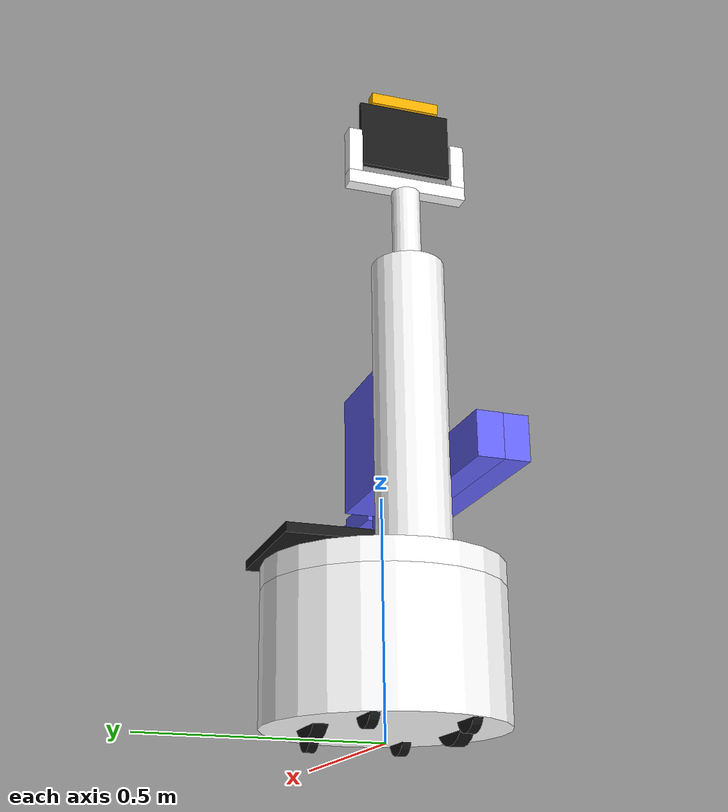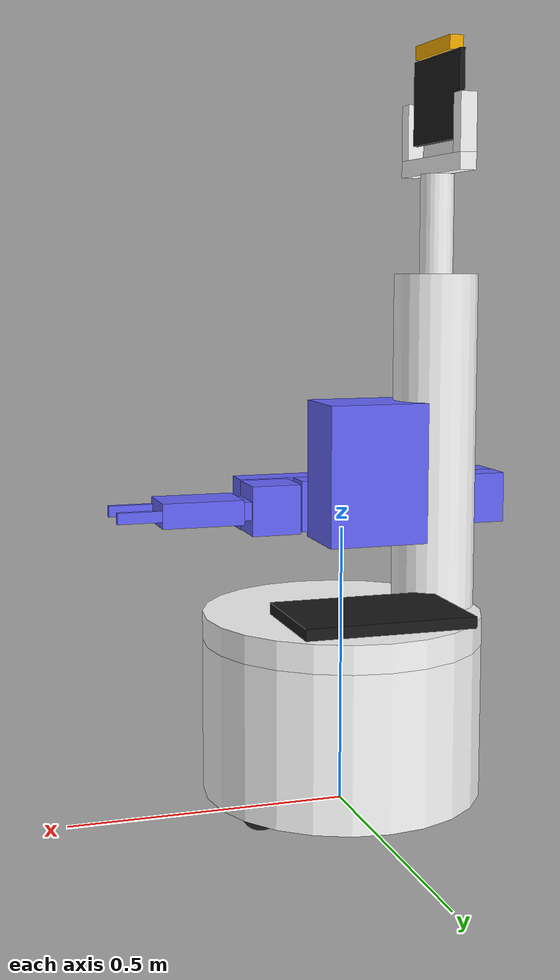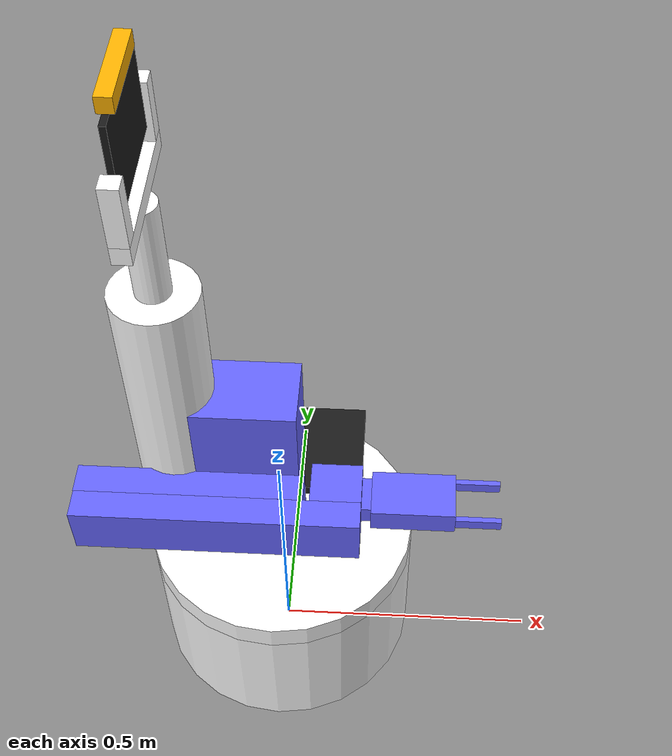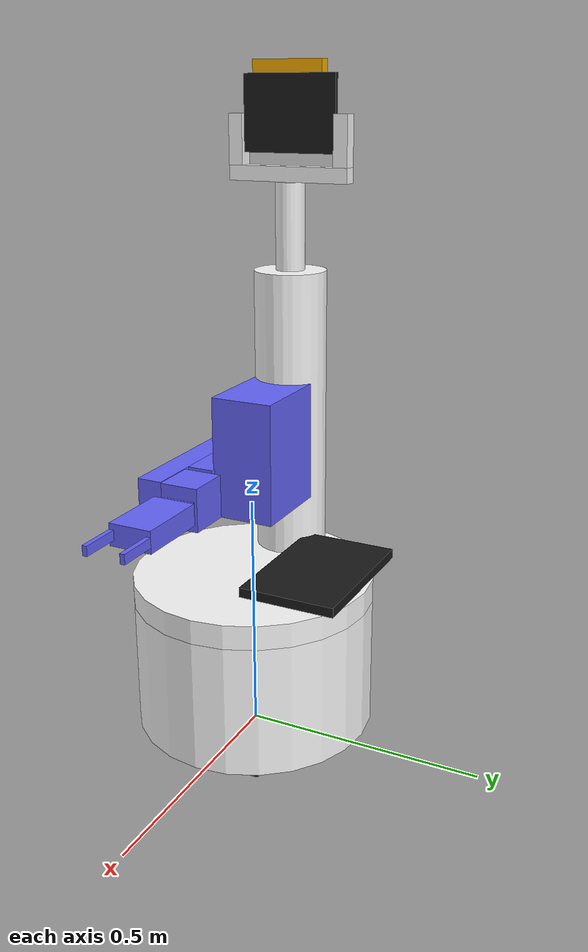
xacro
<?xml version="1.0" ?>
<robot xmlns:xacro="http://www.ros.org/wiki/xacro" name="korus">
  <include filename="$(find korus_meta)/resources/urdf/korus_robosem_base_back_mount_ava.xacro"/>
  <include filename="$(find korus_meta)/resources/urdf/korus_arm_forward.xacro"/>

  <!-- ************************ Robot model ************************* -->
  <xacro:korus_robosem_base_back_mount_ava>
  </xacro:korus_robosem_base_back_mount_ava>

  <!-- ************************ Arm model ************************* -->
	<xacro:korus_arm_forward parent="torso_lift_link">
	</xacro:korus_arm_forward>
</robot>

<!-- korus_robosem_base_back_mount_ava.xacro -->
<robot xmlns:xacro="http://www.ros.org/wiki/xacro">

	  <!-- ************************ Properties ************************** -->
	  <xacro:property name="pi" value="3.1415926535897931" />
	  <xacro:property name="material_white">
	    <material name="white">
	      <color rgba="1 1 1 1"/>
	    </material>
	  </xacro:property>
	  <xacro:property name="material_orange">
	    <material name="orange">
	      <color rgba="1.0 0.7 0.0 1"/>
	    </material>
	  </xacro:property>
	  <xacro:property name="material_red">
	    <material name="red">
	      <color rgba="1.0 0.0 0.0 1"/>
	    </material>
	  </xacro:property>
	  <xacro:property name="material_grey_blue">
	    <material name="grey_blue">
	      <color rgba="0.4 0.4 1.0 1"/>
	    </material>
	  </xacro:property>
	  <xacro:property name="material_blue">
	    <material name="blue">
	      <color rgba="0.0 0.0 1.0 1"/>
	    </material>
	  </xacro:property>
	  <xacro:property name="material_green">
	    <material name="green">
	      <color rgba="0 .8 0 1"/>
	    </material>
	  </xacro:property>
	  <xacro:property name="material_grey">
	    <material name="grey">
	      <color rgba="0.7 0.7 0.7 1.0"/>
	    </material>
	  </xacro:property>
	  <xacro:property name="material_black">
	    <material name="black">
	      <color rgba="0.1 0.1 0.1 1"/>
	    </material>
	  </xacro:property>
    <xacro:property name="wheel_bias" value="0.3" />
    <xacro:property name="wheel_radius" value="0.075" />
    <xacro:property name="caster_wheel_bias" value="0.2" />
    <xacro:property name="caster_wheel_radius" value="0.040" />

    <!-- ************************** Wheel macro ************************** -->
	  <xacro:macro name="wheel" params="name length radius off_x off_y off_z type">
	    <link name="${name}">
	      <visual>
	        <geometry>
	          <cylinder length="${length}" radius="${radius}"/>
	        </geometry>
	        <origin rpy="0 ${pi/2} 0" xyz="0 0 0"/>
	        <material name="black">
	          <color rgba="0.1 0.1 0.1 1"/>
	        </material>
	      </visual>
	    </link>
	    <joint name="${name}" type="${type}">
	      <parent link="base_link"/>
	      <child link="${name}"/>
	      <origin rpy="0 0 ${pi/2}" xyz="${off_x} ${off_y} ${off_z}"/>
	    </joint>
	  </xacro:macro>

    <!-- ************************** Robot macro ************************** -->
    <xacro:macro name="korus_robosem_base_back_mount_ava">

		  <!-- ************************** Base *************************** -->
		  <link name="base_footprint"></link>
		  <joint name="base_joint" type="fixed">
		    <parent link="base_footprint"/>
		    <child link="base_link"/>
		    <origin rpy="0 0 0" xyz="0.0 0.0 0.075"/>
		  </joint>
		  <link name="base_link">
		    <visual>
		      <origin rpy="0 0 0" xyz="0.0 0 0.0875"/>
		       <geometry>
		        <cylinder length="0.275" radius="0.250"/>
		      </geometry>
		      <xacro:insert_block name="material_white" />
		    </visual>
		    <collision>
		      <origin rpy="0 0 0" xyz="0.0 0 0.0875"/>
          <geometry>
            <cylinder length="0.275" radius="0.250"/>
          </geometry>
          <xacro:insert_block name="material_white" />
		    </collision>
		  </link>
		  <xacro:wheel name="wheel_left" length="0.03" radius="${wheel_radius}" off_x="0.0" off_y="${wheel_bias/2}" off_z="0.0" type="continuous"/>
		  <xacro:wheel name="wheel_right" length="0.03" radius="${wheel_radius}" off_x="0.0" off_y="-${wheel_bias/2}" off_z="0.0" type="continuous"/>
		  <xacro:wheel name="caster_front_left" length="0.02" radius="${caster_wheel_radius}" off_x="0.18" off_y="${caster_wheel_bias/2}" off_z="-0.035" type="fixed"/>
		  <xacro:wheel name="caster_front_right" length="0.02" radius="${caster_wheel_radius}" off_x="0.18" off_y="-${caster_wheel_bias/2}" off_z="-0.035" type="fixed"/>
		  <xacro:wheel name="caster_back_left" length="0.02" radius="${caster_wheel_radius}" off_x="-0.18" off_y="${caster_wheel_bias/2}" off_z="-0.035" type="fixed"/>
		  <xacro:wheel name="caster_back_right" length="0.02" radius="${caster_wheel_radius}" off_x="-0.18" off_y="-${caster_wheel_bias/2}" off_z="-0.035" type="fixed"/>

		  <!-- ************************** Body ************************** -->

		  <joint name="body" type="revolute">
		    <parent link="base_link"/>
		    <child link="body_link"/>
		    <origin rpy="0 0 0" xyz="0.0 0.0 0.250"/>
		    <axis xyz="0 0 1"/>.410
		    <limit effort="10" lower="-${pi}" upper="${pi}" velocity="0.013"/>
		  </joint>
		  <link name="body_link">
		    <visual>
		      <origin rpy="0 0 0" xyz="0.0 0.0 0.0"/>
		       <geometry>
		        <cylinder length="0.05" radius="0.25"/>
		      </geometry>
		      <xacro:insert_block name="material_white" />
		    </visual>
        <collision>
          <origin rpy="0 0 0" xyz="0.0 0.0 0.0"/>
           <geometry>
            <cylinder length="0.05" radius="0.25"/>
          </geometry>
          <xacro:insert_block name="material_white" />
        </collision>
		  </link>

      <!-- ************************** Tray ************************** -->
      <joint name="tray_joint" type="revolute">
        <parent link="base_link"/>
        <child link="tray_link"/>
        <origin rpy="0 0 0" xyz="0.0 0.0 0.250"/>
        <axis xyz="0 0 1"/>
        <limit effort="10" lower="-${pi}" upper="${pi}" velocity="0.013"/>
      </joint>
      <link name="tray_link">
	      <visual>
	        <geometry>
	          <box size="0.30 0.20 0.02" />
	        </geometry>
	        <origin rpy="0 0.0 0" xyz="0.0 0.15 0.05"/>
	        <xacro:insert_block name="material_black" />
	      </visual>
        <collision>
          <geometry>
            <box size="0.30 0.20 0.02" />
          </geometry>
          <origin rpy="0 0.0 0" xyz="0.0 0.15 0.05"/>
          <xacro:insert_block name="material_black" />
        </collision>
      </link>

		  <!-- ************************** Torso *************************** -->
		  <joint name="torso_joint" type="fixed">
		    <parent link="body_link"/>
		    <child link="torso_link"/>
		    <origin xyz="-0.175 0.0 0.025" rpy="0 0 0"/>
		  </joint>
		  <link name="torso_link">
		    <visual>
		      <geometry>
		        <cylinder length="0.60" radius="0.075"/>
		      </geometry>
		      <origin rpy="0 0 0" xyz="0 0 0.30"/>
		      <xacro:insert_block name="material_white" />
		    </visual>
        <collision>
          <geometry>
            <cylinder length="0.60" radius="0.075"/>
          </geometry>
          <origin rpy="0 0 0" xyz="0 0 0.30"/>
        </collision>
		  </link>

		  <joint name="torso_lift_offset" type="fixed">
		    <parent link="torso_link"/>
		    <child link="torso_lift_offset_link"/>
		    <origin xyz="0 0 0.25" rpy="0 0 0"/>
		    <axis xyz="0 0 1"/>
		  </joint>
		  <link name="torso_lift_offset_link"></link>

		  <joint name="torso_lift" type="prismatic">
		    <parent link="torso_lift_offset_link"/>
		    <child link="torso_lift_link"/>
		    <origin xyz="0 0 0" rpy="0 0 ${pi}"/>
		    <axis xyz="0 0 1"/>
		    <limit effort="10" lower="-0.10" upper="0.22" velocity="0.5"/>
		  </joint>
		  <link name="torso_lift_link">
		  </link>

    <!-- ************************** Neck ************************** -->

	  <!-- ************************** Head ************************** -->
	  <joint name="head_joint" type="fixed">
	    <parent link="torso_lift_link"/>
	    <child link="head_link"/>
	    <origin rpy="0 0 ${pi}" xyz="0.0 0.0 0.125"/>
	  </joint>
	  <link name="head_link">
	    <visual>
	      <geometry>
	        <cylinder length="0.40" radius="0.03"/>
	      </geometry>
	      <origin rpy="0 0 0" xyz="0.0 0.0 0.2"/>
	      <xacro:insert_block name="material_white" />
	    </visual>
	  </link>

<!--    ************************ Tablet ************************* -->
    <joint name="tablet_pan_joint" type="revolute">
      <parent link="head_link"/>
      <child link="tablet_pan_link"/>
      <origin rpy="0 0 0" xyz="0.0 0.0 0.40"/>
      <axis xyz="0 0 1"/>
      <limit effort="10" lower="-${pi/2}" upper="${pi/2}" velocity="0.013"/>
    </joint>
    <link name="tablet_pan_link">
      <visual>
        <geometry>
          <box size="0.03 0.26 0.03" />
        </geometry>
        <origin rpy="0.0 0.0 0.0" xyz="0.0 0.0 0.015"/>
        <xacro:insert_block name="material_white" />
      </visual>
    </link>

    <joint name="tablet_tilt_mount_left_joint" type="fixed">
      <parent link="tablet_pan_link"/>
      <child link="tablet_tilt_mount_left_link"/>
      <origin rpy="0 0 0" xyz="0 0.115 0"/>
    </joint>
    <link name="tablet_tilt_mount_left_link">
      <visual>
        <geometry>
          <box size="0.03 0.03 0.10" />
        </geometry>
        <origin rpy="0.0 0.0 0.0" xyz="0.0 0.0 0.08"/>
        <xacro:insert_block name="material_white" />
      </visual>
    </link>

    <joint name="tablet_tilt_mount_right_joint" type="fixed">
      <parent link="tablet_pan_link"/>
      <child link="tablet_tilt_mount_right_link"/>
      <origin rpy="0 0 0" xyz="0 -0.115 0"/>
    </joint>
    <link name="tablet_tilt_mount_right_link">
      <visual>
        <geometry>
          <box size="0.03 0.03 0.10 " />
        </geometry>
        <origin rpy="0.0 0.0 0.0" xyz="0.0 0.0 0.08"/>
        <xacro:insert_block name="material_white" />
      </visual>
    </link>

    <joint name="tablet_tilt_joint" type="revolute">
      <parent link="tablet_pan_link"/>
      <child link="tablet_tilt_link"/>
      <origin rpy="${pi/2} 0 0" xyz="0 0 0.13"/>
      <axis xyz="0 0 1"/>
      <limit effort="10" lower="-${pi/2}" upper="${pi/2}" velocity="0.013"/>
    </joint>
    <link name="tablet_tilt_link">
      <visual>
        <geometry>
          <box size="0.01 0.20 0.15" />
        </geometry>
        <origin rpy="-${pi/2} 0.0 0.0" xyz="0.0 0.0 0.0"/>
        <xacro:insert_block name="material_black" />
      </visual>
    </link>

    <!-- *********************** Asus Xtion ************************ -->
    <joint name="asus_tilt_joint" type="fixed">
      <parent link="tablet_tilt_link"/>
      <child link="asus_link"/>
      <origin rpy="0 0 0" xyz="0.0 0.0875 0.0"/>
    </joint>
    <link name="asus_link">
      <visual>
        <geometry>
          <box size="0.025 0.025 0.15" />
        </geometry>
        <origin rpy="0 0 0" xyz="0.0 0.0 0.0"/>
        <xacro:insert_block name="material_orange" />
      </visual>
    </link>
  </xacro:macro>
</robot>

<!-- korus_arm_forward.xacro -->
<robot xmlns:xacro="http://www.ros.org/wiki/xacro">

    <!-- ************************ Properties ************************* -->
    <xacro:property name="pi" value="3.1415926535897931" />
    <xacro:property name="material_white">
      <material name="white">
        <color rgba="1 1 1 1"/>
      </material>
    </xacro:property>
    <xacro:property name="material_orange">
      <material name="orange">
        <color rgba="1.0 0.7 0.0 1"/>
      </material>
    </xacro:property>
    <xacro:property name="material_red">
      <material name="red">
        <color rgba="1.0 0.0 0.0 1"/>
      </material>
    </xacro:property>
    <xacro:property name="material_grey_blue">
      <material name="grey_blue">
        <color rgba="0.4 0.4 1.0 1"/>
      </material>
    </xacro:property>
    <xacro:property name="material_blue">
      <material name="blue">
        <color rgba="0.0 0.0 1.0 1"/>
      </material>
    </xacro:property>
    <xacro:property name="material_green">
      <material name="green">
        <color rgba="0 .8 0 1"/>
      </material>
    </xacro:property>
    <xacro:property name="material_grey">
      <material name="grey">
        <color rgba="0.7 0.7 0.7 1.0"/>
      </material>
    </xacro:property>
    <xacro:property name="material_black">
      <material name="black">
        <color rgba="0.1 0.1 0.1 1"/>
      </material>
    </xacro:property>

  <!-- ************************ Arm macro ************************* -->
  <xacro:macro name="korus_arm_forward" params="parent">
    <joint name="arm_mount_joint" type="fixed">
      <parent link="${parent}"/>
      <child link="arm_mount_link"/>
      <origin xyz="0 0 0" rpy="0 0 0"/>
    </joint>
    <link name="arm_mount_link">
      <visual>
        <geometry>
          <box size="0.2185 0.25 0.13"/>
        </geometry>
        <origin xyz="-0.10925 0.0 0.0" rpy="${pi/2} 0 0"/>
        <xacro:insert_block name="material_grey_blue" />
      </visual>
    </link>

    <joint name="shoulder_roll" type="fixed">
      <parent link="arm_mount_link"/>
      <child link="shoulder_roll_link"/>
      <origin xyz="-0.175 0.09 -0.07" rpy="-${pi/2} 0 0"/>
    </joint>
	  <link name="shoulder_roll_link">
	  </link>

	  <joint name="shoulder_pitch" type="revolute">
	    <parent link="shoulder_roll_link"/>
	    <child link="shoulder_pitch_link"/>
	    <origin xyz="0.0 0.0 0.0" rpy="0.0 0.0 0.0"/>
	    <axis xyz="0 0 1"/>
	    <limit effort="10" lower="-${pi}" upper="${pi}" velocity="0.013"/>
	  </joint>
	  <link name="shoulder_pitch_link">
	    <visual>
	      <geometry>
	        <box size="0.40 0.093 0.055"/>
	      </geometry>
	      <origin xyz="0.146 0.0 0.0" rpy="0 0 0"/>
	      <xacro:insert_block name="material_grey_blue" />
	    </visual>
	  </link>

	  <joint name="elbow_pitch" type="revolute">
	    <parent link="shoulder_pitch_link"/>
	    <child link="elbow_pitch_link"/>
	    <origin xyz="0.29 0.0 0.045" rpy="0 0 3.141592"/>
	    <axis xyz="0 0 1"/>
	    <limit effort="10" lower="-${2*pi}" upper="${2*pi}" velocity="0.013"/>
	  </joint>
	  <link name="elbow_pitch_link">
	    <visual>
	      <geometry>
	        <box size="0.50 0.093 0.053"/>
	      </geometry>
	      <origin xyz="0.195 0.00 0.009" rpy="0 0 0"/>
	      <xacro:insert_block name="material_grey_blue" />
	    </visual>
	  </link>

	  <joint name="wrist_pitch" type="revolute">
	    <parent link="elbow_pitch_link"/>
	    <child link="wrist_pitch_link"/>
	    <origin xyz="0.40 0.0 -0.058" rpy="0 0 0"/>
	    <axis xyz="0 0 1"/>
      <limit effort="10" lower="-${pi}" upper="${pi}" velocity="0.013"/>
	  </joint>
	  <link name="wrist_pitch_link">
	    <visual>
	      <geometry>
	        <box size="0.09 0.09 0.081"/>
	      </geometry>
	      <origin xyz="0.0 0.0 0.0" rpy="0 0 0"/>
	      <xacro:insert_block name="material_grey_blue" />
	    </visual>
	  </link>

	  <joint name="wrist_roll" type="revolute">
	    <parent link="wrist_pitch_link"/>
	    <child link="wrist_roll_link"/>
	    <origin xyz="0.045 0 0" rpy="0 ${pi/2} 0.0"/>
	    <axis xyz="0 0 1"/>
	    <limit effort="10" lower="-${pi}" upper="${pi}" velocity="0.013"/>
	  </joint>
	  <link name="wrist_roll_link">
	    <visual>
	      <geometry>
	        <box size="0.068 0.034 0.068"/>
	      </geometry>
	      <origin xyz="0.0 0.0 0.034" rpy="0 0 0"/>
	      <xacro:insert_block name="material_grey_blue" />
	    </visual>
	  </link>

	  <joint name="wrist_yaw" type="revolute">
	    <parent link="wrist_roll_link"/>
	    <child link="wrist_yaw_link"/>
	    <origin xyz="0 0 0.034" rpy="${pi/2} -${pi/2} 0.0"/>
	    <axis xyz="0 0 1"/>
	    <limit effort="10" lower="-1.6232" upper="1.6232" velocity="0.5"/>
	  </joint>
	  <link name="wrist_yaw_link">
	      <visual>
	      <geometry>
	        <box size="0.148 0.09 0.045"/>
	      </geometry>
	      <origin xyz="0.057 0.0 0.0" rpy="0 0 0"/>
	      <xacro:insert_block name="material_grey_blue" />
	    </visual>
	  </link>

	<!--   Endeffector (gripper)  -->
	  <joint name="gripper_palm" type="fixed">
	    <parent link="wrist_yaw_link"/>
	    <child link="gripper_palm_link"/>
	    <origin xyz="0.131 0 0" rpy="0.0 0.0 0.0"/>
	    <axis xyz="0 0 1"/>
	    <limit effort="10" lower="-1.6232" upper="1.6232" velocity="0.5"/>
	  </joint>
	  <link name="gripper_palm_link">
	  </link>

	  <!-- center of the volume covered by the fingers -->
	  <joint name="gripper_center" type="fixed">
	    <parent link="wrist_yaw_link"/>
	    <child link="gripper_center_link"/>
	    <origin xyz="0.181 0 0" rpy="0 0 0"/>
	  </joint>
	  <link name="gripper_center_link">
	  </link>

	  <joint name="gripper_left_finger_joint" type="prismatic">
	    <parent link="wrist_yaw_link"/>
	    <child link="gripper_left_finger_tip_link"/>
	    <origin xyz="0.131 -0.04 0.0" rpy="0.0 0.0 0.0"/>
	    <axis xyz="0 1 0"/>
	    <limit effort="10" lower="0.0" upper="0.04" velocity="0.5"/>
	  </joint>
	  <link name="gripper_left_finger_tip_link">
	      <visual>
	      <geometry>
	        <box size="0.08 0.02 0.01"/>
	      </geometry>
	      <origin xyz="0.04 0.0 0.0" rpy="${pi/2} 0 0"/>
	      <xacro:insert_block name="material_grey_blue" />
	    </visual>
	  </link>

	  <joint name="gripper_right_finger_joint" type="prismatic">
	    <parent link="wrist_yaw_link"/>
	    <child link="gripper_right_finger_tip_link"/>
	    <origin xyz="0.131 0.04 0.0" rpy="${pi} 0.0 0.0"/>
	    <axis xyz="0 1 0"/>
	    <limit effort="10" lower="0.0" upper="0.04" velocity="0.5"/>
	  </joint>
	  <link name="gripper_right_finger_tip_link">
	      <visual>
	      <geometry>
	        <box size="0.08 0.02 0.01"/>
	      </geometry>
	      <origin xyz="0.04 0.0 0.0" rpy="${pi/2} 0 0"/>
	      <xacro:insert_block name="material_grey_blue" />
	    </visual>
	  </link>
  </xacro:macro>
</robot>
